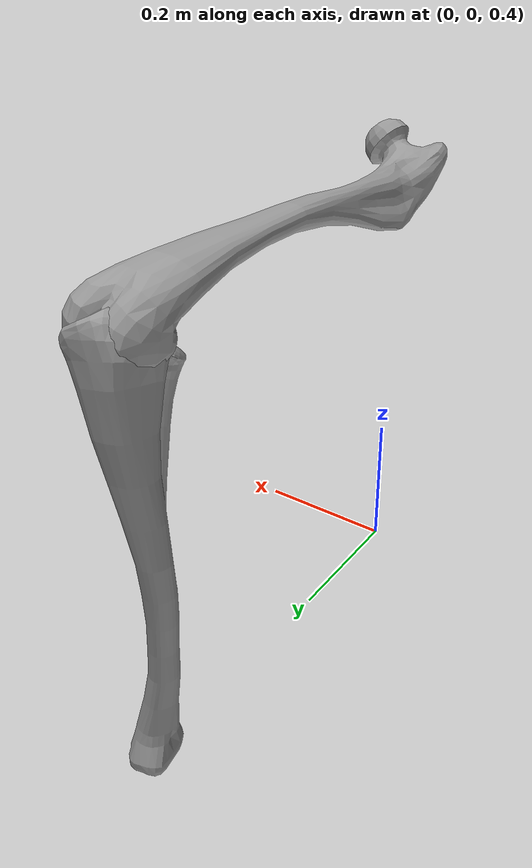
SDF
<?xml version="1.0" ?>
<!-- Note: Typical bone density: 1900 kg/m3 -->
<!--Density of Al: 2700 kg/m3-->
<!--Reference for strength of some mouse hindlimb muscle:
    https://www.ncbi.nlm.nih.gov/pmc/articles/PMC4549925/
    Maximal force generation was about 40g, i.e. ca. 0.4N.
    -->

<sdf version="1.6">
  <model name="knee_jerk">
    <link name="thigh">
    <pose frame=''>0 0 1 0 -0 0</pose>
    <inertial>
      <pose frame=''>0 0 0 0 -0 0</pose>
      <mass>5</mass>
	<inertia>
	  <ixx>1</ixx>
	  <ixy>0</ixy>
	  <ixz>0</ixz>
	  <iyy>1</iyy>
	  <iyz>0</iyz>
	  <izz>1</izz>
	</inertia>
    </inertial>
    <collision name='thigh_collision'>
	<pose frame=''>0 0.25 0 1.5708 -0 0</pose>
	<geometry>
	  <cylinder>
	    <length>0.5</length>
	    <radius>0.05</radius>
	  </cylinder>
	</geometry>
    </collision>
    <visual name='thigh_visual'>
	<pose frame=''>0 0.25 0 1.5708 -0 0</pose>
	<geometry>
	  <mesh>
            <scale>1 1 1</scale>
            <uri>model://opensim_knee_jerk_tut/meshes/thigh.dae</uri>
          </mesh>
	</geometry>
	<material>
          <script>
            <name>Gazebo/Grey</name>
            <uri>file://media/materials/scripts/gazebo.material</uri>
          </script>
        </material>
    </visual>
    </link>

    <link name="shank">
    <pose frame=''>0 0.5 1 0 -0 0</pose>
    <inertial>
      <pose frame=''>0 0 0 0 -0 0</pose>
      <mass>5</mass>
      <inertia>
	<ixx>1</ixx>
	  <ixy>0</ixy>
	  <ixz>0</ixz>
	  <iyy>1</iyy>
	  <iyz>0</iyz>
	  <izz>1</izz>
      </inertia>
    </inertial>
    <collision name='shank_collision'>
      <pose frame=''>0 0 -0.25 0 -0 0</pose>
	<geometry>
	  <cylinder>
	    <length>0.5</length>
	    <radius>0.01</radius>
	  </cylinder>
	</geometry>
    </collision>
    <visual name='shank_visual'>
      <pose frame=''>0 0.05 -0.3 0 -0 0</pose>
	<geometry>
	  <mesh>
            <scale>1 1 1</scale>
            <uri>model://opensim_knee_jerk_tut/meshes/shank.dae</uri>
          </mesh>
	</geometry>
	<material>
          <script>
            <name>Gazebo/Grey</name>
            <uri>file://media/materials/scripts/gazebo.material</uri>
          </script>
        </material>
    </visual>
    </link>

    <joint name='hip' type='fixed'>
      <child>thigh</child>
      <parent>world</parent>
    </joint>

    <joint name='knee' type='revolute'>
      <child>shank</child>
      <parent>thigh</parent>
      <axis>
        <xyz>1 0 0</xyz>
        <dynamics>
          <damping>1.e-6</damping>
        </dynamics>
        <limit>
            <lower>-1.046</lower>
            <upper>1.046</upper>
            <stiffness>100</stiffness>
            <dissipation>1.e-2</dissipation>
        </limit>
      </axis>
    </joint>

    <muscles>model://opensim_knee_jerk_tut/muscles.osim</muscles>

    <plugin name="muscle_interface_plugin" filename="libgazebo_ros_muscle_interface.so"></plugin>
  </model>
</sdf>
